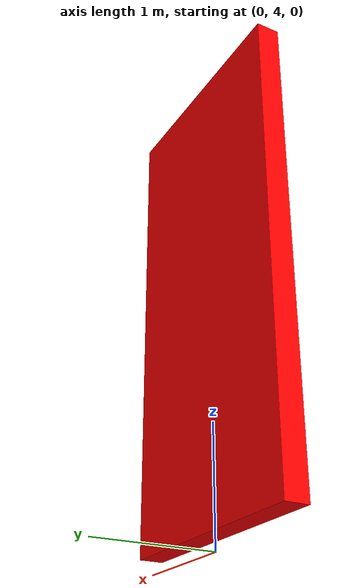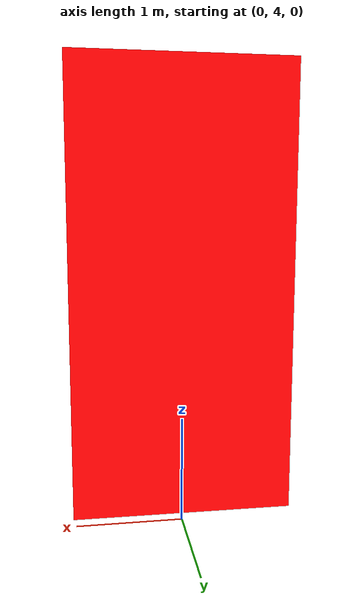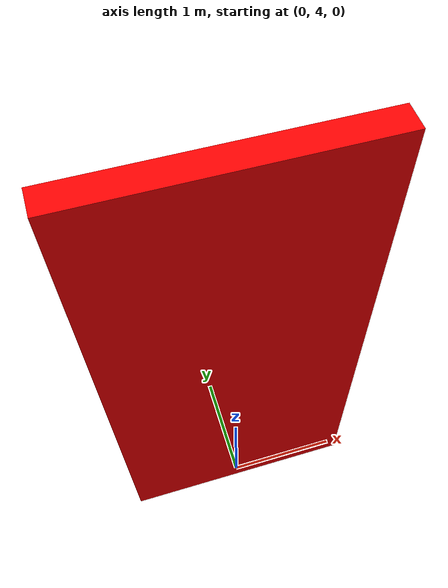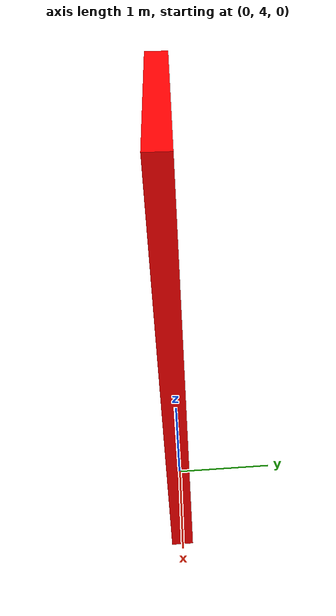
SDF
<?xml version='1.0'?>
<sdf version="1.4">
<model name="wall1">
    <link name="pared1">
        <collision name="collision">
            <geometry>
               <mesh>
                  <uri>model://wall1/meshes/pared1.dae</uri>
               </mesh>
            </geometry>
        </collision>
        <visual name="visual">
            <geometry>
               <mesh>
                  <uri>model://wall1/meshes/pared1.dae</uri>
               </mesh>
            </geometry>
        </visual>
     </link>
     <plugin name="wall1plugin" filename="libwall1plugin.so"/>
</model>
</sdf>
